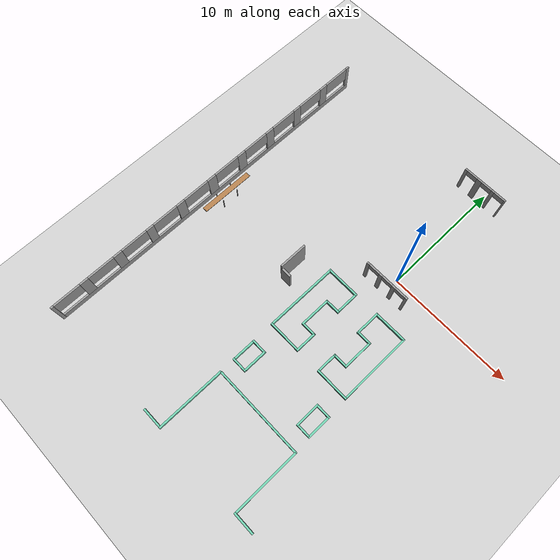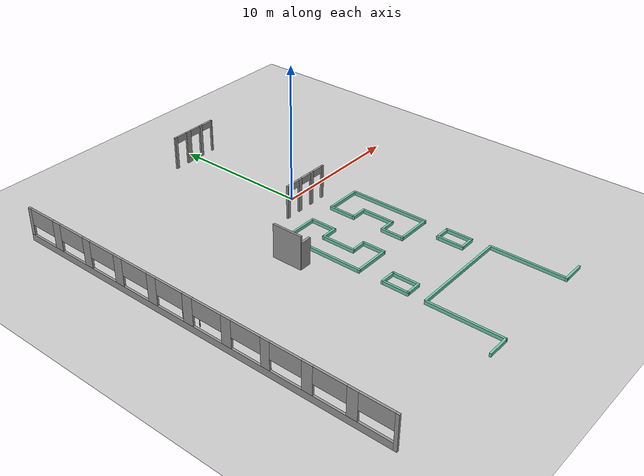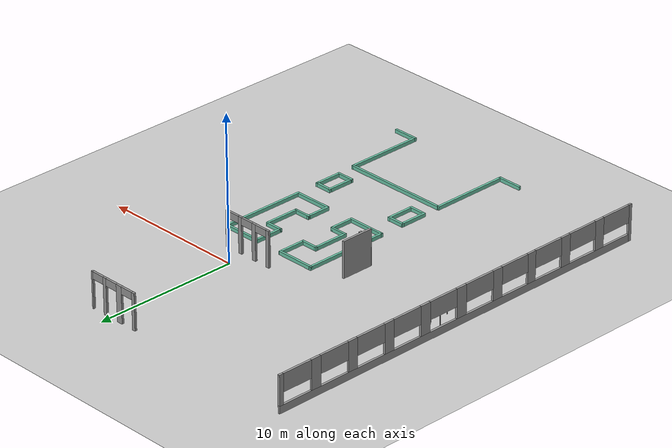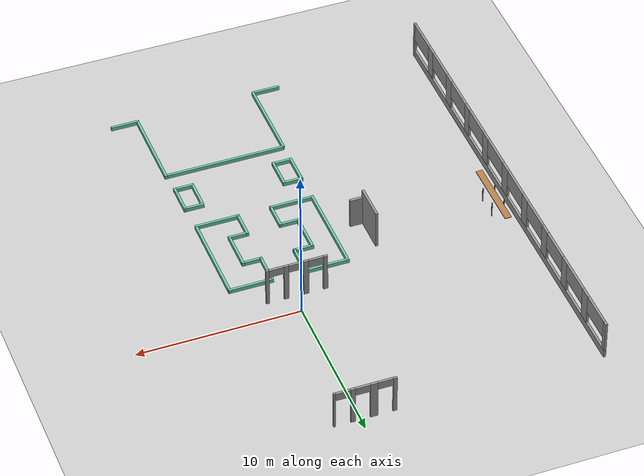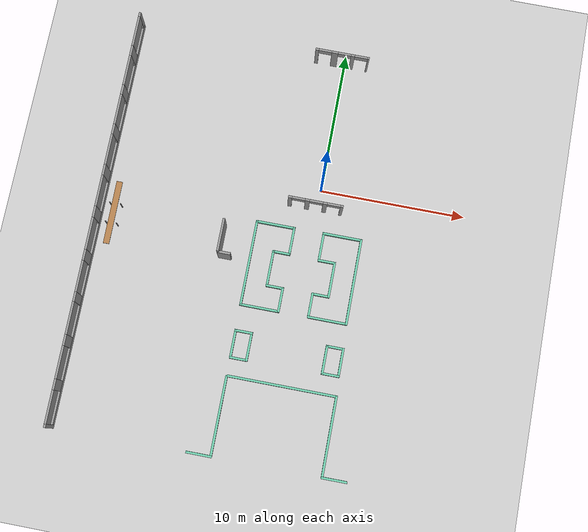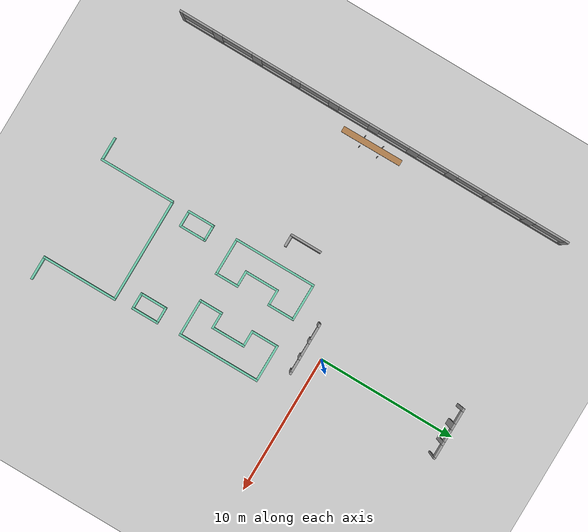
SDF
<sdf version="1.6">
 <world name="default">
  <model name="ground_plane">
   <static>1</static>
   <link name="link">
    <collision name="collision">
     <geometry><plane><normal>0 0 1</normal><size>100 100</size></plane></geometry>
     <surface><friction><ode><mu>100</mu><mu2>50</mu2></ode></friction></surface>
    </collision>
    <visual name="visual">
     <cast_shadows>0</cast_shadows>
     <geometry><plane><normal>0 0 1</normal><size>100 100</size></plane></geometry>
     <material>
      <script><uri>file://media/materials/scripts/gazebo.material</uri><name>Gazebo/Grey</name></script>
     </material>
    </visual>
   </link>
  </model>
  <model name="giardinoCV1">
   <pose>-0.16754 -4.92249 0 0 -0 0</pose>
   <link name="Wall_10">
    <collision name="Wall_10_Collision">
     <geometry><box><size>6 0.15 0.25</size></box></geometry>
     <pose>0 0 0.125 0 -0 0</pose>
    </collision>
    <visual name="Wall_10_Visual">
     <pose>0 0 0.125 0 -0 0</pose>
     <geometry><box><size>6 0.15 0.25</size></box></geometry>
     <material>
      <script><uri>file://media/materials/scripts/gazebo.material</uri><name>Gazebo/Grey</name></script>
      <ambient>0.435294 0.796078 0.67451 1</ambient>
     </material>
    </visual>
    <pose>-3.747 -0.957193 0 0 -0 1.5708</pose>
   </link>
   <link name="Wall_101">
    <pose>-0.099908 14.1522 0 0 -0 0</pose>
    <visual name="Wall_101_Visual_0">
     <pose>-1.76004 0 1.25 0 -0 0</pose>
     <geometry><box><size>0.229915 0.15 2.5</size></box></geometry>
     <material>
      <script><uri>file://media/materials/scripts/gazebo.material</uri><name>Gazebo/Grey</name></script>
      <ambient>1 1 1 1</ambient>
     </material>
    </visual>
    <collision name="Wall_101_Collision_0">
     <geometry><box><size>0.229915 0.15 2.5</size></box></geometry>
     <pose>-1.76004 0 1.25 0 -0 0</pose>
    </collision>
    <visual name="Wall_101_Visual_1">
     <pose>-0.524419 0 1.25 0 -0 0</pose>
     <geometry><box><size>0.441333 0.15 2.5</size></box></geometry>
     <material>
      <script><uri>file://media/materials/scripts/gazebo.material</uri><name>Gazebo/Grey</name></script>
      <ambient>1 1 1 1</ambient>
     </material>
    </visual>
    <collision name="Wall_101_Collision_1">
     <geometry><box><size>0.441333 0.15 2.5</size></box></geometry>
     <pose>-0.524419 0 1.25 0 -0 0</pose>
    </collision>
    <visual name="Wall_101_Visual_2">
     <pose>0.724862 0 1.25 0 -0 0</pose>
     <geometry><box><size>0.257229 0.15 2.5</size></box></geometry>
     <material>
      <script><uri>file://media/materials/scripts/gazebo.material</uri><name>Gazebo/Grey</name></script>
      <ambient>1 1 1 1</ambient>
     </material>
    </visual>
    <collision name="Wall_101_Collision_2">
     <geometry><box><size>0.257229 0.15 2.5</size></box></geometry>
     <pose>0.724862 0 1.25 0 -0 0</pose>
    </collision>
    <visual name="Wall_101_Visual_3">
     <pose>1.81424 0 1.25 0 -0 0</pose>
     <geometry><box><size>0.121523 0.15 2.5</size></box></geometry>
     <material>
      <script><uri>file://media/materials/scripts/gazebo.material</uri><name>Gazebo/Grey</name></script>
      <ambient>1 1 1 1</ambient>
     </material>
    </visual>
    <collision name="Wall_101_Collision_3">
     <geometry><box><size>0.121523 0.15 2.5</size></box></geometry>
     <pose>1.81424 0 1.25 0 -0 0</pose>
    </collision>
    <visual name="Wall_101_Visual_4">
     <pose>-1.19508 0 2.25 0 -0 0</pose>
     <geometry><box><size>0.9 0.15 0.5</size></box></geometry>
     <material>
      <script><uri>file://media/materials/scripts/gazebo.material</uri><name>Gazebo/Grey</name></script>
      <ambient>1 1 1 1</ambient>
     </material>
    </visual>
    <collision name="Wall_101_Collision_4">
     <geometry><box><size>0.9 0.15 0.5</size></box></geometry>
     <pose>-1.19508 0 2.25 0 -0 0</pose>
    </collision>
    <visual name="Wall_101_Visual_5">
     <pose>0.146248 0 2.25 0 -0 0</pose>
     <geometry><box><size>0.9 0.15 0.5</size></box></geometry>
     <material>
      <script><uri>file://media/materials/scripts/gazebo.material</uri><name>Gazebo/Grey</name></script>
      <ambient>1 1 1 1</ambient>
     </material>
    </visual>
    <collision name="Wall_101_Collision_5">
     <geometry><box><size>0.9 0.15 0.5</size></box></geometry>
     <pose>0.146248 0 2.25 0 -0 0</pose>
    </collision>
    <visual name="Wall_101_Visual_6">
     <pose>1.30348 0 2.25 0 -0 0</pose>
     <geometry><box><size>0.9 0.15 0.5</size></box></geometry>
     <material>
      <script><uri>file://media/materials/scripts/gazebo.material</uri><name>Gazebo/Grey</name></script>
      <ambient>1 1 1 1</ambient>
     </material>
    </visual>
    <collision name="Wall_101_Collision_6">
     <geometry><box><size>0.9 0.15 0.5</size></box></geometry>
     <pose>1.30348 0 2.25 0 -0 0</pose>
    </collision>
   </link>
   <link name="Wall_12">
    <collision name="Wall_12_Collision">
     <geometry><box><size>6 0.15 0.25</size></box></geometry>
     <pose>0 0 0.125 0 -0 0</pose>
    </collision>
    <visual name="Wall_12_Visual">
     <pose>0 0 0.125 0 -0 0</pose>
     <geometry><box><size>6 0.15 0.25</size></box></geometry>
     <material>
      <script><uri>file://media/materials/scripts/gazebo.material</uri><name>Gazebo/Grey</name></script>
      <ambient>0.435294 0.796078 0.67451 1</ambient>
     </material>
    </visual>
    <pose>3.509 -0.940193 0 0 -0 1.5708</pose>
   </link>
   <link name="Wall_2">
    <collision name="Wall_2_Collision">
     <geometry><box><size>1.75 0.15 0.25</size></box></geometry>
     <pose>0 0 0.125 0 -0 0</pose>
    </collision>
    <visual name="Wall_2_Visual">
     <pose>0 0 0.125 0 -0 0</pose>
     <geometry><box><size>1.75 0.15 0.25</size></box></geometry>
     <material>
      <script><uri>file://media/materials/scripts/gazebo.material</uri><name>Gazebo/Grey</name></script>
      <ambient>0.435294 0.796078 0.67451 1</ambient>
     </material>
    </visual>
    <pose>-4.52 -14.1522 0 0 -0 0</pose>
   </link>
   <link name="Wall_3">
    <collision name="Wall_3_Collision">
     <geometry><box><size>5.5 0.15 0.25</size></box></geometry>
     <pose>0 0 0.125 0 -0 0</pose>
    </collision>
    <visual name="Wall_3_Visual">
     <pose>0 0 0.125 0 -0 0</pose>
     <geometry><box><size>5.5 0.15 0.25</size></box></geometry>
     <material>
      <script><uri>file://media/materials/scripts/gazebo.material</uri><name>Gazebo/Grey</name></script>
      <ambient>0.435294 0.796078 0.67451 1</ambient>
     </material>
    </visual>
    <pose>-3.72 -11.4772 0 0 -0 1.5708</pose>
   </link>
   <link name="Wall_32">
    <collision name="Wall_32_Collision">
     <geometry><box><size>2.75 0.15 0.25</size></box></geometry>
     <pose>0 0 0.125 0 -0 0</pose>
    </collision>
    <visual name="Wall_32_Visual">
     <pose>0 0 0.125 0 -0 0</pose>
     <geometry><box><size>2.75 0.15 0.25</size></box></geometry>
     <material>
      <script><uri>file://media/materials/scripts/gazebo.material</uri><name>Gazebo/Grey</name></script>
      <ambient>0.435294 0.796078 0.67451 1</ambient>
     </material>
    </visual>
    <pose>-2.447 -3.88219 0 0 -0 0</pose>
   </link>
   <link name="Wall_34">
    <collision name="Wall_34_Collision">
     <geometry><box><size>2.75 0.15 0.25</size></box></geometry>
     <pose>0 0 0.125 0 -0 0</pose>
    </collision>
    <visual name="Wall_34_Visual">
     <pose>0 0 0.125 0 -0 0</pose>
     <geometry><box><size>2.75 0.15 0.25</size></box></geometry>
     <material>
      <script><uri>file://media/materials/scripts/gazebo.material</uri><name>Gazebo/Grey</name></script>
      <ambient>0.435294 0.796078 0.67451 1</ambient>
     </material>
    </visual>
    <pose>2.209 -3.86519 0 0 -0 3.14159</pose>
   </link>
   <link name="Wall_38">
    <collision name="Wall_38_Collision">
     <geometry><box><size>2.75 0.15 0.25</size></box></geometry>
     <pose>0 0 0.125 0 -0 0</pose>
    </collision>
    <visual name="Wall_38_Visual">
     <pose>0 0 0.125 0 -0 0</pose>
     <geometry><box><size>2.75 0.15 0.25</size></box></geometry>
     <material>
      <script><uri>file://media/materials/scripts/gazebo.material</uri><name>Gazebo/Grey</name></script>
      <ambient>0.435294 0.796078 0.67451 1</ambient>
     </material>
    </visual>
    <pose>-2.447 1.96781 0 0 -0 0</pose>
   </link>
   <link name="Wall_40">
    <collision name="Wall_40_Collision">
     <geometry><box><size>2.75 0.15 0.25</size></box></geometry>
     <pose>0 0 0.125 0 -0 0</pose>
    </collision>
    <visual name="Wall_40_Visual">
     <pose>0 0 0.125 0 -0 0</pose>
     <geometry><box><size>2.75 0.15 0.25</size></box></geometry>
     <material>
      <script><uri>file://media/materials/scripts/gazebo.material</uri><name>Gazebo/Grey</name></script>
      <ambient>0.435294 0.796078 0.67451 1</ambient>
     </material>
    </visual>
    <pose>2.209 1.98481 0 0 -0 3.14159</pose>
   </link>
   <link name="Wall_45">
    <collision name="Wall_45_Collision">
     <geometry><box><size>2 0.15 0.25</size></box></geometry>
     <pose>0 0 0.125 0 -0 0</pose>
    </collision>
    <visual name="Wall_45_Visual">
     <pose>0 0 0.125 0 -0 0</pose>
     <geometry><box><size>2 0.15 0.25</size></box></geometry>
     <material>
      <script><uri>file://media/materials/scripts/gazebo.material</uri><name>Gazebo/Grey</name></script>
      <ambient>0.435294 0.796078 0.67451 1</ambient>
     </material>
    </visual>
    <pose>-3.728 -6.59019 0 0 0 -1.5708</pose>
   </link>
   <link name="Wall_47">
    <collision name="Wall_47_Collision">
     <geometry><box><size>2 0.15 0.25</size></box></geometry>
     <pose>0 0 0.125 0 -0 0</pose>
    </collision>
    <visual name="Wall_47_Visual">
     <pose>0 0 0.125 0 -0 0</pose>
     <geometry><box><size>2 0.15 0.25</size></box></geometry>
     <material>
      <script><uri>file://media/materials/scripts/gazebo.material</uri><name>Gazebo/Grey</name></script>
      <ambient>0.435294 0.796078 0.67451 1</ambient>
     </material>
    </visual>
    <pose>3.611 -6.49119 0 0 0 -1.5708</pose>
   </link>
   <link name="Wall_5">
    <collision name="Wall_5_Collision">
     <geometry><box><size>1.75 0.15 0.25</size></box></geometry>
     <pose>0 0 0.125 0 -0 0</pose>
    </collision>
    <visual name="Wall_5_Visual">
     <pose>0 0 0.125 0 -0 0</pose>
     <geometry><box><size>1.75 0.15 0.25</size></box></geometry>
     <material>
      <script><uri>file://media/materials/scripts/gazebo.material</uri><name>Gazebo/Grey</name></script>
      <ambient>0.435294 0.796078 0.67451 1</ambient>
     </material>
    </visual>
    <pose>4.52 -14.1062 0 0 -0 3.14159</pose>
   </link>
   <link name="Wall_51">
    <collision name="Wall_51_Collision">
     <geometry><box><size>1.25 0.15 0.25</size></box></geometry>
     <pose>0 0 0.125 0 -0 0</pose>
    </collision>
    <visual name="Wall_51_Visual">
     <pose>0 0 0.125 0 -0 0</pose>
     <geometry><box><size>1.25 0.15 0.25</size></box></geometry>
     <material>
      <script><uri>file://media/materials/scripts/gazebo.material</uri><name>Gazebo/Grey</name></script>
      <ambient>0.435294 0.796078 0.67451 1</ambient>
     </material>
    </visual>
    <pose>3.061 -5.56619 0 0 -0 3.14159</pose>
   </link>
   <link name="Wall_53">
    <collision name="Wall_53_Collision">
     <geometry><box><size>1.25 0.15 0.25</size></box></geometry>
     <pose>0 0 0.125 0 -0 0</pose>
    </collision>
    <visual name="Wall_53_Visual">
     <pose>0 0 0.125 0 -0 0</pose>
     <geometry><box><size>1.25 0.15 0.25</size></box></geometry>
     <material>
      <script><uri>file://media/materials/scripts/gazebo.material</uri><name>Gazebo/Grey</name></script>
      <ambient>0.435294 0.796078 0.67451 1</ambient>
     </material>
    </visual>
    <pose>-3.178 -7.51519 0 0 -0 0</pose>
   </link>
   <link name="Wall_55">
    <collision name="Wall_55_Collision">
     <geometry><box><size>1.25 0.15 0.25</size></box></geometry>
     <pose>0 0 0.125 0 -0 0</pose>
    </collision>
    <visual name="Wall_55_Visual">
     <pose>0 0 0.125 0 -0 0</pose>
     <geometry><box><size>1.25 0.15 0.25</size></box></geometry>
     <material>
      <script><uri>file://media/materials/scripts/gazebo.material</uri><name>Gazebo/Grey</name></script>
      <ambient>0.435294 0.796078 0.67451 1</ambient>
     </material>
    </visual>
    <pose>3.061 -7.41619 0 0 -0 3.14159</pose>
   </link>
   <link name="Wall_57">
    <collision name="Wall_57_Collision">
     <geometry><box><size>1.25 0.15 0.25</size></box></geometry>
     <pose>0 0 0.125 0 -0 0</pose>
    </collision>
    <visual name="Wall_57_Visual">
     <pose>0 0 0.125 0 -0 0</pose>
     <geometry><box><size>1.25 0.15 0.25</size></box></geometry>
     <material>
      <script><uri>file://media/materials/scripts/gazebo.material</uri><name>Gazebo/Grey</name></script>
      <ambient>0.435294 0.796078 0.67451 1</ambient>
     </material>
    </visual>
    <pose>-3.178 -5.66519 0 0 -0 0</pose>
   </link>
   <link name="Wall_58">
    <collision name="Wall_58_Collision">
     <geometry><box><size>2 0.15 0.25</size></box></geometry>
     <pose>0 0 0.125 0 -0 0</pose>
    </collision>
    <visual name="Wall_58_Visual">
     <pose>0 0 0.125 0 -0 0</pose>
     <geometry><box><size>2 0.15 0.25</size></box></geometry>
     <material>
      <script><uri>file://media/materials/scripts/gazebo.material</uri><name>Gazebo/Grey</name></script>
      <ambient>0.435294 0.796078 0.67451 1</ambient>
     </material>
    </visual>
    <pose>-2.628 -6.59019 0 0 0 -1.5708</pose>
   </link>
   <link name="Wall_60">
    <collision name="Wall_60_Collision">
     <geometry><box><size>2 0.15 0.25</size></box></geometry>
     <pose>0 0 0.125 0 -0 0</pose>
    </collision>
    <visual name="Wall_60_Visual">
     <pose>0 0 0.125 0 -0 0</pose>
     <geometry><box><size>2 0.15 0.25</size></box></geometry>
     <material>
      <script><uri>file://media/materials/scripts/gazebo.material</uri><name>Gazebo/Grey</name></script>
      <ambient>0.435294 0.796078 0.67451 1</ambient>
     </material>
    </visual>
    <pose>2.511 -6.49119 0 0 0 -1.5708</pose>
   </link>
   <link name="Wall_64">
    <collision name="Wall_64_Collision">
     <geometry><box><size>2 0.15 0.25</size></box></geometry>
     <pose>0 0 0.125 0 -0 0</pose>
    </collision>
    <visual name="Wall_64_Visual">
     <pose>0 0 0.125 0 -0 0</pose>
     <geometry><box><size>2 0.15 0.25</size></box></geometry>
     <material>
      <script><uri>file://media/materials/scripts/gazebo.material</uri><name>Gazebo/Grey</name></script>
      <ambient>0.435294 0.796078 0.67451 1</ambient>
     </material>
    </visual>
    <pose>-1.147 1.04281 0 0 0 -1.5708</pose>
   </link>
   <link name="Wall_7">
    <collision name="Wall_7_Collision">
     <geometry><box><size>5.5 0.15 0.25</size></box></geometry>
     <pose>0 0 0.125 0 -0 0</pose>
    </collision>
    <visual name="Wall_7_Visual">
     <pose>0 0 0.125 0 -0 0</pose>
     <geometry><box><size>5.5 0.15 0.25</size></box></geometry>
     <material>
      <script><uri>file://media/materials/scripts/gazebo.material</uri><name>Gazebo/Grey</name></script>
      <ambient>0.435294 0.796078 0.67451 1</ambient>
     </material>
    </visual>
    <pose>3.72 -11.4312 0 0 -0 1.5708</pose>
   </link>
   <link name="Wall_70">
    <collision name="Wall_70_Collision">
     <geometry><box><size>1.75 0.15 0.25</size></box></geometry>
     <pose>0 0 0.125 0 -0 0</pose>
    </collision>
    <visual name="Wall_70_Visual">
     <pose>0 0 0.125 0 -0 0</pose>
     <geometry><box><size>1.75 0.15 0.25</size></box></geometry>
     <material>
      <script><uri>file://media/materials/scripts/gazebo.material</uri><name>Gazebo/Grey</name></script>
      <ambient>0.435294 0.796078 0.67451 1</ambient>
     </material>
    </visual>
    <pose>-1.147 -3.08219 0 0 0 -1.5708</pose>
   </link>
   <link name="Wall_72">
    <collision name="Wall_72_Collision">
     <geometry><box><size>1.75 0.15 0.25</size></box></geometry>
     <pose>0 0 0.125 0 -0 0</pose>
    </collision>
    <visual name="Wall_72_Visual">
     <pose>0 0 0.125 0 -0 0</pose>
     <geometry><box><size>1.75 0.15 0.25</size></box></geometry>
     <material>
      <script><uri>file://media/materials/scripts/gazebo.material</uri><name>Gazebo/Grey</name></script>
      <ambient>0.435294 0.796078 0.67451 1</ambient>
     </material>
    </visual>
    <pose>0.909 -3.06519 0 0 -0 1.5708</pose>
   </link>
   <link name="Wall_73">
    <collision name="Wall_73_Collision">
     <geometry><box><size>1.25 0.15 0.25</size></box></geometry>
     <pose>0 0 0.125 0 -0 0</pose>
    </collision>
    <visual name="Wall_73_Visual">
     <pose>0 0 0.125 0 -0 0</pose>
     <geometry><box><size>1.25 0.15 0.25</size></box></geometry>
     <material>
      <script><uri>file://media/materials/scripts/gazebo.material</uri><name>Gazebo/Grey</name></script>
      <ambient>0.435294 0.796078 0.67451 1</ambient>
     </material>
    </visual>
    <pose>1.459 -2.26519 0 0 -0 0</pose>
   </link>
   <link name="Wall_74">
    <collision name="Wall_74_Collision">
     <geometry><box><size>2.5 0.15 0.25</size></box></geometry>
     <pose>0 0 0.125 0 -0 0</pose>
    </collision>
    <visual name="Wall_74_Visual">
     <pose>0 0 0.125 0 -0 0</pose>
     <geometry><box><size>2.5 0.15 0.25</size></box></geometry>
     <material>
      <script><uri>file://media/materials/scripts/gazebo.material</uri><name>Gazebo/Grey</name></script>
      <ambient>0.435294 0.796078 0.67451 1</ambient>
     </material>
    </visual>
    <pose>2.009 -1.09019 0 0 -0 1.5708</pose>
   </link>
   <link name="Wall_75">
    <collision name="Wall_75_Collision">
     <geometry><box><size>1.25 0.15 0.25</size></box></geometry>
     <pose>0 0 0.125 0 -0 0</pose>
    </collision>
    <visual name="Wall_75_Visual">
     <pose>0 0 0.125 0 -0 0</pose>
     <geometry><box><size>1.25 0.15 0.25</size></box></geometry>
     <material>
      <script><uri>file://media/materials/scripts/gazebo.material</uri><name>Gazebo/Grey</name></script>
      <ambient>0.435294 0.796078 0.67451 1</ambient>
     </material>
    </visual>
    <pose>1.459 0.084807 0 0 -0 3.14159</pose>
   </link>
   <link name="Wall_76">
    <collision name="Wall_76_Collision">
     <geometry><box><size>2.05 0.15 0.25</size></box></geometry>
     <pose>0 0 0.125 0 -0 0</pose>
    </collision>
    <visual name="Wall_76_Visual">
     <pose>0 0 0.125 0 -0 0</pose>
     <geometry><box><size>2.05 0.15 0.25</size></box></geometry>
     <material>
      <script><uri>file://media/materials/scripts/gazebo.material</uri><name>Gazebo/Grey</name></script>
      <ambient>0.435294 0.796078 0.67451 1</ambient>
     </material>
    </visual>
    <pose>0.909 1.03481 0 0 -0 1.5708</pose>
   </link>
   <link name="Wall_8">
    <collision name="Wall_8_Collision">
     <geometry><box><size>7.5 0.15 0.25</size></box></geometry>
     <pose>0 0 0.125 0 -0 0</pose>
    </collision>
    <visual name="Wall_8_Visual">
     <pose>0 0 0.125 0 -0 0</pose>
     <geometry><box><size>7.5 0.15 0.25</size></box></geometry>
     <material>
      <script><uri>file://media/materials/scripts/gazebo.material</uri><name>Gazebo/Grey</name></script>
      <ambient>0.435294 0.796078 0.67451 1</ambient>
     </material>
    </visual>
    <pose>0.045 -8.75619 0 0 -0 3.14159</pose>
   </link>
   <link name="Wall_80">
    <collision name="Wall_80_Collision">
     <geometry><box><size>1.25 0.15 0.25</size></box></geometry>
     <pose>0 0 0.125 0 -0 0</pose>
    </collision>
    <visual name="Wall_80_Visual">
     <pose>0 0 0.125 0 -0 0</pose>
     <geometry><box><size>1.25 0.15 0.25</size></box></geometry>
     <material>
      <script><uri>file://media/materials/scripts/gazebo.material</uri><name>Gazebo/Grey</name></script>
      <ambient>0.435294 0.796078 0.67451 1</ambient>
     </material>
    </visual>
    <pose>-1.697 -2.28219 0 0 -0 3.14159</pose>
   </link>
   <link name="Wall_84">
    <collision name="Wall_84_Collision">
     <geometry><box><size>1.25 0.15 0.25</size></box></geometry>
     <pose>0 0 0.125 0 -0 0</pose>
    </collision>
    <visual name="Wall_84_Visual">
     <pose>0 0 0.125 0 -0 0</pose>
     <geometry><box><size>1.25 0.15 0.25</size></box></geometry>
     <material>
      <script><uri>file://media/materials/scripts/gazebo.material</uri><name>Gazebo/Grey</name></script>
      <ambient>0.435294 0.796078 0.67451 1</ambient>
     </material>
    </visual>
    <pose>-1.697 0.117807 0 0 -0 3.14159</pose>
   </link>
   <link name="Wall_85">
    <collision name="Wall_85_Collision">
     <geometry><box><size>2.55 0.15 0.25</size></box></geometry>
     <pose>0 0 0.125 0 -0 0</pose>
    </collision>
    <visual name="Wall_85_Visual">
     <pose>0 0 0.125 0 -0 0</pose>
     <geometry><box><size>2.55 0.15 0.25</size></box></geometry>
     <material>
      <script><uri>file://media/materials/scripts/gazebo.material</uri><name>Gazebo/Grey</name></script>
      <ambient>0.435294 0.796078 0.67451 1</ambient>
     </material>
    </visual>
    <pose>-2.247 -1.08219 0 0 0 -1.5708</pose>
   </link>
   <link name="Wall_97">
    <pose>-0.021006 3.55303 0 0 -0 0</pose>
    <visual name="Wall_97_Visual_0">
     <pose>-1.74689 0 1.25 0 -0 0</pose>
     <geometry><box><size>0.256216 0.15 2.5</size></box></geometry>
     <material>
      <script><uri>file://media/materials/scripts/gazebo.material</uri><name>Gazebo/Grey</name></script>
      <ambient>1 1 1 1</ambient>
     </material>
    </visual>
    <collision name="Wall_97_Collision_0">
     <geometry><box><size>0.256216 0.15 2.5</size></box></geometry>
     <pose>-1.74689 0 1.25 0 -0 0</pose>
    </collision>
    <visual name="Wall_97_Visual_1">
     <pose>-0.56387 0 1.25 0 -0 0</pose>
     <geometry><box><size>0.30983 0.15 2.5</size></box></geometry>
     <material>
      <script><uri>file://media/materials/scripts/gazebo.material</uri><name>Gazebo/Grey</name></script>
      <ambient>1 1 1 1</ambient>
     </material>
    </visual>
    <collision name="Wall_97_Collision_1">
     <geometry><box><size>0.30983 0.15 2.5</size></box></geometry>
     <pose>-0.56387 0 1.25 0 -0 0</pose>
    </collision>
    <visual name="Wall_97_Visual_2">
     <pose>0.63281 0 1.25 0 -0 0</pose>
     <geometry><box><size>0.283529 0.15 2.5</size></box></geometry>
     <material>
      <script><uri>file://media/materials/scripts/gazebo.material</uri><name>Gazebo/Grey</name></script>
      <ambient>1 1 1 1</ambient>
     </material>
    </visual>
    <collision name="Wall_97_Collision_2">
     <geometry><box><size>0.283529 0.15 2.5</size></box></geometry>
     <pose>0.63281 0 1.25 0 -0 0</pose>
    </collision>
    <visual name="Wall_97_Visual_3">
     <pose>1.77479 0 1.25 0 -0 0</pose>
     <geometry><box><size>0.200425 0.15 2.5</size></box></geometry>
     <material>
      <script><uri>file://media/materials/scripts/gazebo.material</uri><name>Gazebo/Grey</name></script>
      <ambient>1 1 1 1</ambient>
     </material>
    </visual>
    <collision name="Wall_97_Collision_3">
     <geometry><box><size>0.200425 0.15 2.5</size></box></geometry>
     <pose>1.77479 0 1.25 0 -0 0</pose>
    </collision>
    <visual name="Wall_97_Visual_4">
     <pose>-1.16878 0 2.25 0 -0 0</pose>
     <geometry><box><size>0.9 0.15 0.5</size></box></geometry>
     <material>
      <script><uri>file://media/materials/scripts/gazebo.material</uri><name>Gazebo/Grey</name></script>
      <ambient>1 1 1 1</ambient>
     </material>
    </visual>
    <collision name="Wall_97_Collision_4">
     <geometry><box><size>0.9 0.15 0.5</size></box></geometry>
     <pose>-1.16878 0 2.25 0 -0 0</pose>
    </collision>
    <visual name="Wall_97_Visual_5">
     <pose>0.041045 0 2.25 0 -0 0</pose>
     <geometry><box><size>0.9 0.15 0.5</size></box></geometry>
     <material>
      <script><uri>file://media/materials/scripts/gazebo.material</uri><name>Gazebo/Grey</name></script>
      <ambient>1 1 1 1</ambient>
     </material>
    </visual>
    <collision name="Wall_97_Collision_5">
     <geometry><box><size>0.9 0.15 0.5</size></box></geometry>
     <pose>0.041045 0 2.25 0 -0 0</pose>
    </collision>
    <visual name="Wall_97_Visual_6">
     <pose>1.22457 0 2.25 0 -0 0</pose>
     <geometry><box><size>0.9 0.15 0.5</size></box></geometry>
     <material>
      <script><uri>file://media/materials/scripts/gazebo.material</uri><name>Gazebo/Grey</name></script>
      <ambient>1 1 1 1</ambient>
     </material>
    </visual>
    <collision name="Wall_97_Collision_6">
     <geometry><box><size>0.9 0.15 0.5</size></box></geometry>
     <pose>1.22457 0 2.25 0 -0 0</pose>
    </collision>
   </link>
   <static>1</static>
  </model>
  <model name="ca_vignal_1">
   <pose>-8.21048 -6.13752 0 0 -0 0</pose>
   <link name="Door_1">
    <collision name="Door_1_Collision">
     <geometry><box><size>0.9 0.17 2</size></box></geometry>
     <pose>0 0 1 0 -0 0</pose>
    </collision>
    <visual name="Door_1_Visual">
     <pose>0 0 1 0 -0 0</pose>
     <geometry><box><size>0.9 0.17 2</size></box></geometry>
     <material>
      <script><uri>file://media/materials/scripts/gazebo.material</uri><name>Gazebo/Grey</name></script>
     </material>
    </visual>
    <pose>2.62198 0.308665 0 0 -0 0</pose>
   </link>
   <link name="Wall_0">
    <pose>-6.35164 1.29841 0 0 -0 1.5708</pose>
    <visual name="Wall_0_Visual_0">
     <pose>-14.2835 0 1.25 0 -0 0</pose>
     <geometry><box><size>0.235089 0.15 2.5</size></box></geometry>
     <material>
      <script><uri>file://media/materials/scripts/gazebo.material</uri><name>Gazebo/Grey</name></script>
      <ambient>1 1 1 1</ambient>
     </material>
    </visual>
    <collision name="Wall_0_Collision_0">
     <geometry><box><size>0.235089 0.15 2.5</size></box></geometry>
     <pose>-14.2835 0 1.25 0 -0 0</pose>
    </collision>
    <visual name="Wall_0_Visual_1">
     <pose>0.117544 0 0.25 0 -0 0</pose>
     <geometry><box><size>28.5671 0.15 0.5</size></box></geometry>
     <material>
      <script><uri>file://media/materials/scripts/gazebo.material</uri><name>Gazebo/Grey</name></script>
      <ambient>1 1 1 1</ambient>
     </material>
    </visual>
    <collision name="Wall_0_Collision_1">
     <geometry><box><size>28.5671 0.15 0.5</size></box></geometry>
     <pose>0.117544 0 0.25 0 -0 0</pose>
    </collision>
    <visual name="Wall_0_Visual_2">
     <pose>-11.5998 0 1.5 0 -0 0</pose>
     <geometry><box><size>0.716549 0.15 2</size></box></geometry>
     <material>
      <script><uri>file://media/materials/scripts/gazebo.material</uri><name>Gazebo/Grey</name></script>
      <ambient>1 1 1 1</ambient>
     </material>
    </visual>
    <collision name="Wall_0_Collision_2">
     <geometry><box><size>0.716549 0.15 2</size></box></geometry>
     <pose>-11.5998 0 1.5 0 -0 0</pose>
    </collision>
    <visual name="Wall_0_Visual_3">
     <pose>-8.68449 0 1.5 0 -0 0</pose>
     <geometry><box><size>0.738343 0.15 2</size></box></geometry>
     <material>
      <script><uri>file://media/materials/scripts/gazebo.material</uri><name>Gazebo/Grey</name></script>
      <ambient>1 1 1 1</ambient>
     </material>
    </visual>
    <collision name="Wall_0_Collision_3">
     <geometry><box><size>0.738343 0.15 2</size></box></geometry>
     <pose>-8.68449 0 1.5 0 -0 0</pose>
    </collision>
    <visual name="Wall_0_Visual_4">
     <pose>-5.79269 0 1.5 0 -0 0</pose>
     <geometry><box><size>0.646852 0.15 2</size></box></geometry>
     <material>
      <script><uri>file://media/materials/scripts/gazebo.material</uri><name>Gazebo/Grey</name></script>
      <ambient>1 1 1 1</ambient>
     </material>
    </visual>
    <collision name="Wall_0_Collision_4">
     <geometry><box><size>0.646852 0.15 2</size></box></geometry>
     <pose>-5.79269 0 1.5 0 -0 0</pose>
    </collision>
    <visual name="Wall_0_Visual_5">
     <pose>-2.9503 0 1.5 0 -0 0</pose>
     <geometry><box><size>0.744454 0.15 2</size></box></geometry>
     <material>
      <script><uri>file://media/materials/scripts/gazebo.material</uri><name>Gazebo/Grey</name></script>
      <ambient>1 1 1 1</ambient>
     </material>
    </visual>
    <collision name="Wall_0_Collision_5">
     <geometry><box><size>0.744454 0.15 2</size></box></geometry>
     <pose>-2.9503 0 1.5 0 -0 0</pose>
    </collision>
    <visual name="Wall_0_Visual_6">
     <pose>0.028378 0 1.5 0 -0 0</pose>
     <geometry><box><size>0.779514 0.15 2</size></box></geometry>
     <material>
      <script><uri>file://media/materials/scripts/gazebo.material</uri><name>Gazebo/Grey</name></script>
      <ambient>1 1 1 1</ambient>
     </material>
    </visual>
    <collision name="Wall_0_Collision_6">
     <geometry><box><size>0.779514 0.15 2</size></box></geometry>
     <pose>0.028378 0 1.5 0 -0 0</pose>
    </collision>
    <visual name="Wall_0_Visual_7">
     <pose>2.96332 0 1.5 0 -0 0</pose>
     <geometry><box><size>0.761928 0.15 2</size></box></geometry>
     <material>
      <script><uri>file://media/materials/scripts/gazebo.material</uri><name>Gazebo/Grey</name></script>
      <ambient>1 1 1 1</ambient>
     </material>
    </visual>
    <collision name="Wall_0_Collision_7">
     <geometry><box><size>0.761928 0.15 2</size></box></geometry>
     <pose>2.96332 0 1.5 0 -0 0</pose>
    </collision>
    <visual name="Wall_0_Visual_8">
     <pose>5.85759 0 1.5 0 -0 0</pose>
     <geometry><box><size>0.733132 0.15 2</size></box></geometry>
     <material>
      <script><uri>file://media/materials/scripts/gazebo.material</uri><name>Gazebo/Grey</name></script>
      <ambient>1 1 1 1</ambient>
     </material>
    </visual>
    <collision name="Wall_0_Collision_8">
     <geometry><box><size>0.733132 0.15 2</size></box></geometry>
     <pose>5.85759 0 1.5 0 -0 0</pose>
    </collision>
    <visual name="Wall_0_Visual_9">
     <pose>8.71919 0 1.5 0 -0 0</pose>
     <geometry><box><size>0.696864 0.15 2</size></box></geometry>
     <material>
      <script><uri>file://media/materials/scripts/gazebo.material</uri><name>Gazebo/Grey</name></script>
      <ambient>1 1 1 1</ambient>
     </material>
    </visual>
    <collision name="Wall_0_Collision_9">
     <geometry><box><size>0.696864 0.15 2</size></box></geometry>
     <pose>8.71919 0 1.5 0 -0 0</pose>
    </collision>
    <visual name="Wall_0_Visual_10">
     <pose>11.5805 0 1.5 0 -0 0</pose>
     <geometry><box><size>0.718517 0.15 2</size></box></geometry>
     <material>
      <script><uri>file://media/materials/scripts/gazebo.material</uri><name>Gazebo/Grey</name></script>
      <ambient>1 1 1 1</ambient>
     </material>
    </visual>
    <collision name="Wall_0_Collision_10">
     <geometry><box><size>0.718517 0.15 2</size></box></geometry>
     <pose>11.5805 0 1.5 0 -0 0</pose>
    </collision>
    <visual name="Wall_0_Visual_11">
     <pose>14.2472 0 1.5 0 -0 0</pose>
     <geometry><box><size>0.30779 0.15 2</size></box></geometry>
     <material>
      <script><uri>file://media/materials/scripts/gazebo.material</uri><name>Gazebo/Grey</name></script>
      <ambient>1 1 1 1</ambient>
     </material>
    </visual>
    <collision name="Wall_0_Collision_11">
     <geometry><box><size>0.30779 0.15 2</size></box></geometry>
     <pose>14.2472 0 1.5 0 -0 0</pose>
    </collision>
    <visual name="Wall_0_Visual_12">
     <pose>-13.062 0 1.9 0 -0 0</pose>
     <geometry><box><size>2.20795 0.15 1.2</size></box></geometry>
     <material>
      <script><uri>file://media/materials/scripts/gazebo.material</uri><name>Gazebo/Grey</name></script>
      <ambient>1 1 1 1</ambient>
     </material>
    </visual>
    <collision name="Wall_0_Collision_12">
     <geometry><box><size>2.20795 0.15 1.2</size></box></geometry>
     <pose>-13.062 0 1.9 0 -0 0</pose>
    </collision>
    <visual name="Wall_0_Visual_13">
     <pose>-10.1476 0 1.9 0 -0 0</pose>
     <geometry><box><size>2.18784 0.15 1.2</size></box></geometry>
     <material>
      <script><uri>file://media/materials/scripts/gazebo.material</uri><name>Gazebo/Grey</name></script>
      <ambient>1 1 1 1</ambient>
     </material>
    </visual>
    <collision name="Wall_0_Collision_13">
     <geometry><box><size>2.18784 0.15 1.2</size></box></geometry>
     <pose>-10.1476 0 1.9 0 -0 0</pose>
    </collision>
    <visual name="Wall_0_Visual_14">
     <pose>-7.21572 0 1.9 0 -0 0</pose>
     <geometry><box><size>2.19921 0.15 1.2</size></box></geometry>
     <material>
      <script><uri>file://media/materials/scripts/gazebo.material</uri><name>Gazebo/Grey</name></script>
      <ambient>1 1 1 1</ambient>
     </material>
    </visual>
    <collision name="Wall_0_Collision_14">
     <geometry><box><size>2.19921 0.15 1.2</size></box></geometry>
     <pose>-7.21572 0 1.9 0 -0 0</pose>
    </collision>
    <visual name="Wall_0_Visual_15">
     <pose>-4.3959 0 1.9 0 -0 0</pose>
     <geometry><box><size>2.14674 0.15 1.2</size></box></geometry>
     <material>
      <script><uri>file://media/materials/scripts/gazebo.material</uri><name>Gazebo/Grey</name></script>
      <ambient>1 1 1 1</ambient>
     </material>
    </visual>
    <collision name="Wall_0_Collision_15">
     <geometry><box><size>2.14674 0.15 1.2</size></box></geometry>
     <pose>-4.3959 0 1.9 0 -0 0</pose>
    </collision>
    <visual name="Wall_0_Visual_16">
     <pose>-1.46973 0 1.9 0 -0 0</pose>
     <geometry><box><size>2.2167 0.15 1.2</size></box></geometry>
     <material>
      <script><uri>file://media/materials/scripts/gazebo.material</uri><name>Gazebo/Grey</name></script>
      <ambient>1 1 1 1</ambient>
     </material>
    </visual>
    <collision name="Wall_0_Collision_16">
     <geometry><box><size>2.2167 0.15 1.2</size></box></geometry>
     <pose>-1.46973 0 1.9 0 -0 0</pose>
    </collision>
    <visual name="Wall_0_Visual_17">
     <pose>1.50025 0 1.9 0 -0 0</pose>
     <geometry><box><size>2.16423 0.15 1.2</size></box></geometry>
     <material>
      <script><uri>file://media/materials/scripts/gazebo.material</uri><name>Gazebo/Grey</name></script>
      <ambient>1 1 1 1</ambient>
     </material>
    </visual>
    <collision name="Wall_0_Collision_17">
     <geometry><box><size>2.16423 0.15 1.2</size></box></geometry>
     <pose>1.50025 0 1.9 0 -0 0</pose>
    </collision>
    <visual name="Wall_0_Visual_18">
     <pose>4.41765 0 1.9 0 -0 0</pose>
     <geometry><box><size>2.14674 0.15 1.2</size></box></geometry>
     <material>
      <script><uri>file://media/materials/scripts/gazebo.material</uri><name>Gazebo/Grey</name></script>
      <ambient>1 1 1 1</ambient>
     </material>
    </visual>
    <collision name="Wall_0_Collision_18">
     <geometry><box><size>2.14674 0.15 1.2</size></box></geometry>
     <pose>4.41765 0 1.9 0 -0 0</pose>
    </collision>
    <visual name="Wall_0_Visual_19">
     <pose>7.29746 0 1.9 0 -0 0</pose>
     <geometry><box><size>2.1466 0.15 1.2</size></box></geometry>
     <material>
      <script><uri>file://media/materials/scripts/gazebo.material</uri><name>Gazebo/Grey</name></script>
      <ambient>1 1 1 1</ambient>
     </material>
    </visual>
    <collision name="Wall_0_Collision_19">
     <geometry><box><size>2.1466 0.15 1.2</size></box></geometry>
     <pose>7.29746 0 1.9 0 -0 0</pose>
    </collision>
    <visual name="Wall_0_Visual_20">
     <pose>10.1444 0 1.9 0 -0 0</pose>
     <geometry><box><size>2.15358 0.15 1.2</size></box></geometry>
     <material>
      <script><uri>file://media/materials/scripts/gazebo.material</uri><name>Gazebo/Grey</name></script>
      <ambient>1 1 1 1</ambient>
     </material>
    </visual>
    <collision name="Wall_0_Collision_20">
     <geometry><box><size>2.15358 0.15 1.2</size></box></geometry>
     <pose>10.1444 0 1.9 0 -0 0</pose>
    </collision>
    <visual name="Wall_0_Visual_21">
     <pose>13.0165 0 1.9 0 -0 0</pose>
     <geometry><box><size>2.15358 0.15 1.2</size></box></geometry>
     <material>
      <script><uri>file://media/materials/scripts/gazebo.material</uri><name>Gazebo/Grey</name></script>
      <ambient>1 1 1 1</ambient>
     </material>
    </visual>
    <collision name="Wall_0_Collision_21">
     <geometry><box><size>2.15358 0.15 1.2</size></box></geometry>
     <pose>13.0165 0 1.9 0 -0 0</pose>
    </collision>
   </link>
   <link name="Wall_82">
    <collision name="Wall_82_Collision">
     <geometry><box><size>2.25 0.15 2.5</size></box></geometry>
     <pose>0 0 1.25 0 -0 0</pose>
    </collision>
    <visual name="Wall_82_Visual">
     <pose>0 0 1.25 0 -0 0</pose>
     <geometry><box><size>2.25 0.15 2.5</size></box></geometry>
     <material>
      <script><uri>file://media/materials/scripts/gazebo.material</uri><name>Gazebo/Grey</name></script>
      <ambient>1 1 1 1</ambient>
     </material>
    </visual>
    <pose>2.23077 1.37471 0 0 0 -1.5708</pose>
   </link>
   <static>1</static>
  </model>
  <model name="tablesclass_clone_4">
   <link name="link">
    <inertial>
     <inertia><ixx>0</ixx><ixy>0</ixy><ixz>0</ixz><iyy>0</iyy><iyz>0</iyz><izz>0</izz></inertia>
     <mass>1.73923</mass>
    </inertial>
    <visual name="front_right_leg">
     <pose>0.68 -0.38 0.5 0 -0 0</pose>
     <geometry><cylinder><radius>0.0324505</radius><length>1</length></cylinder></geometry>
     <material>
      <script><uri>file://media/materials/scripts/gazebo.material</uri><name>Gazebo/Grey</name></script>
      <ambient>0.3 0.3 0.3 1</ambient>
      <diffuse>0.7 0.7 0.7 1</diffuse>
      <specular>0.01 0.01 0.01 1</specular>
      <emissive>0 0 0 1</emissive>
     </material>
    </visual>
    <visual name="back_left_leg">
     <pose>-0.68 0.38 0.5 0 -0 0</pose>
     <geometry><cylinder><radius>0.0324505</radius><length>1</length></cylinder></geometry>
     <material>
      <script><uri>file://media/materials/scripts/gazebo.material</uri><name>Gazebo/Grey</name></script>
      <ambient>0.3 0.3 0.3 1</ambient>
      <diffuse>0.7 0.7 0.7 1</diffuse>
      <specular>0.01 0.01 0.01 1</specular>
      <emissive>0 0 0 1</emissive>
     </material>
    </visual>
    <visual name="front_left_leg">
     <pose>0.68 0.38 0.5 0 -0 0</pose>
     <geometry><cylinder><radius>0.0324505</radius><length>1</length></cylinder></geometry>
     <material>
      <script><uri>file://media/materials/scripts/gazebo.material</uri><name>Gazebo/Grey</name></script>
      <ambient>0.3 0.3 0.3 1</ambient>
      <diffuse>0.7 0.7 0.7 1</diffuse>
      <specular>0.01 0.01 0.01 1</specular>
      <emissive>0 0 0 1</emissive>
     </material>
    </visual>
    <visual name="visual1">
     <pose>0 0 1 0 -0 0</pose>
     <geometry><box><size>4.38513 0.412326 0.04</size></box></geometry>
     <material>
      <script><uri>file://media/materials/scripts/gazebo.material</uri><name>Gazebo/Wood</name></script>
      <ambient>1 1 1 1</ambient>
      <diffuse>1 1 1 1</diffuse>
      <specular>0.2 0.2 0.2 1</specular>
      <emissive>0 0 0 1</emissive>
     </material>
    </visual>
    <visual name="back_right_leg">
     <pose>-0.68 -0.38 0.5 0 -0 0</pose>
     <geometry><cylinder><radius>0.0324505</radius><length>1</length></cylinder></geometry>
     <material>
      <script><uri>file://media/materials/scripts/gazebo.material</uri><name>Gazebo/Grey</name></script>
      <ambient>0.3 0.3 0.3 1</ambient>
      <diffuse>0.7 0.7 0.7 1</diffuse>
      <specular>0.01 0.01 0.01 1</specular>
      <emissive>0 0 0 1</emissive>
     </material>
    </visual>
    <collision name="front_left_leg">
     <pose>0.68 0.38 0.5 0 -0 0</pose>
     <geometry><cylinder><radius>0.03245</radius><length>1</length></cylinder></geometry>
     <surface>
      <friction>
       <ode><mu>1</mu><mu2>1</mu2><fdir1>0 0 0</fdir1><slip1>0</slip1><slip2>0</slip2></ode>
       <torsional>
        <coefficient>1</coefficient>
        <patch_radius>0</patch_radius>
        <surface_radius>0</surface_radius>
        <use_patch_radius>1</use_patch_radius>
        <ode><slip>0</slip></ode>
       </torsional>
      </friction>
      <bounce><restitution_coefficient>0</restitution_coefficient><threshold>1e+06</threshold></bounce>
      <contact>
       <collide_without_contact>0</collide_without_contact>
       <collide_without_contact_bitmask>1</collide_without_contact_bitmask>
       <collide_bitmask>1</collide_bitmask>
       <ode>
        <soft_cfm>0</soft_cfm>
        <soft_erp>0.2</soft_erp>
        <kp>1e+13</kp>
        <kd>1</kd>
        <max_vel>0.01</max_vel>
        <min_depth>0</min_depth>
       </ode>
       <bullet>
        <split_impulse>1</split_impulse>
        <split_impulse_penetration_threshold>-0.01</split_impulse_penetration_threshold>
        <soft_cfm>0</soft_cfm>
        <soft_erp>0.2</soft_erp>
        <kp>1e+13</kp>
        <kd>1</kd>
       </bullet>
      </contact>
     </surface>
    </collision>
    <collision name="front_right_leg">
     <pose>0.68 -0.38 0.5 0 -0 0</pose>
     <geometry><cylinder><radius>0.03245</radius><length>1</length></cylinder></geometry>
     <surface>
      <friction>
       <ode><mu>1</mu><mu2>1</mu2><fdir1>0 0 0</fdir1><slip1>0</slip1><slip2>0</slip2></ode>
       <torsional>
        <coefficient>1</coefficient>
        <patch_radius>0</patch_radius>
        <surface_radius>0</surface_radius>
        <use_patch_radius>1</use_patch_radius>
        <ode><slip>0</slip></ode>
       </torsional>
      </friction>
      <bounce><restitution_coefficient>0</restitution_coefficient><threshold>1e+06</threshold></bounce>
      <contact>
       <collide_without_contact>0</collide_without_contact>
       <collide_without_contact_bitmask>1</collide_without_contact_bitmask>
       <collide_bitmask>1</collide_bitmask>
       <ode>
        <soft_cfm>0</soft_cfm>
        <soft_erp>0.2</soft_erp>
        <kp>1e+13</kp>
        <kd>1</kd>
        <max_vel>0.01</max_vel>
        <min_depth>0</min_depth>
       </ode>
       <bullet>
        <split_impulse>1</split_impulse>
        <split_impulse_penetration_threshold>-0.01</split_impulse_penetration_threshold>
        <soft_cfm>0</soft_cfm>
        <soft_erp>0.2</soft_erp>
        <kp>1e+13</kp>
        <kd>1</kd>
       </bullet>
      </contact>
     </surface>
    </collision>
    <collision name="back_left_leg">
     <pose>-0.68 0.38 0.5 0 -0 0</pose>
     <geometry><cylinder><radius>0.03245</radius><length>1</length></cylinder></geometry>
     <surface>
      <friction>
       <ode><mu>1</mu><mu2>1</mu2><fdir1>0 0 0</fdir1><slip1>0</slip1><slip2>0</slip2></ode>
       <torsional>
        <coefficient>1</coefficient>
        <patch_radius>0</patch_radius>
        <surface_radius>0</surface_radius>
        <use_patch_radius>1</use_patch_radius>
        <ode><slip>0</slip></ode>
       </torsional>
      </friction>
      <bounce><restitution_coefficient>0</restitution_coefficient><threshold>1e+06</threshold></bounce>
      <contact>
       <collide_without_contact>0</collide_without_contact>
       <collide_without_contact_bitmask>1</collide_without_contact_bitmask>
       <collide_bitmask>1</collide_bitmask>
       <ode>
        <soft_cfm>0</soft_cfm>
        <soft_erp>0.2</soft_erp>
        <kp>1e+13</kp>
        <kd>1</kd>
        <max_vel>0.01</max_vel>
        <min_depth>0</min_depth>
       </ode>
       <bullet>
        <split_impulse>1</split_impulse>
        <split_impulse_penetration_threshold>-0.01</split_impulse_penetration_threshold>
        <soft_cfm>0</soft_cfm>
        <soft_erp>0.2</soft_erp>
        <kp>1e+13</kp>
        <kd>1</kd>
       </bullet>
      </contact>
     </surface>
    </collision>
    <collision name="back_right_leg">
     <pose>-0.68 -0.38 0.5 0 -0 0</pose>
     <geometry><cylinder><radius>0.03245</radius><length>1</length></cylinder></geometry>
     <surface>
      <friction>
       <ode><mu>1</mu><mu2>1</mu2><fdir1>0 0 0</fdir1><slip1>0</slip1><slip2>0</slip2></ode>
       <torsional>
        <coefficient>1</coefficient>
        <patch_radius>0</patch_radius>
        <surface_radius>0</surface_radius>
        <use_patch_radius>1</use_patch_radius>
        <ode><slip>0</slip></ode>
       </torsional>
      </friction>
      <bounce><restitution_coefficient>0</restitution_coefficient><threshold>1e+06</threshold></bounce>
      <contact>
       <collide_without_contact>0</collide_without_contact>
       <collide_without_contact_bitmask>1</collide_without_contact_bitmask>
       <collide_bitmask>1</collide_bitmask>
       <ode>
        <soft_cfm>0</soft_cfm>
        <soft_erp>0.2</soft_erp>
        <kp>1e+13</kp>
        <kd>1</kd>
        <max_vel>0.01</max_vel>
        <min_depth>0</min_depth>
       </ode>
       <bullet>
        <split_impulse>1</split_impulse>
        <split_impulse_penetration_threshold>-0.01</split_impulse_penetration_threshold>
        <soft_cfm>0</soft_cfm>
        <soft_erp>0.2</soft_erp>
        <kp>1e+13</kp>
        <kd>1</kd>
       </bullet>
      </contact>
     </surface>
    </collision>
    <collision name="surface">
     <pose>0 0 1 0 -0 0</pose>
     <geometry><box><size>4.69836 0.412326 0.03</size></box></geometry>
     <surface>
      <friction>
       <ode><mu>0.6</mu><mu2>0.6</mu2><fdir1>0 0 0</fdir1><slip1>0</slip1><slip2>0</slip2></ode>
       <torsional>
        <coefficient>1</coefficient>
        <patch_radius>0</patch_radius>
        <surface_radius>0</surface_radius>
        <use_patch_radius>1</use_patch_radius>
        <ode><slip>0</slip></ode>
       </torsional>
      </friction>
      <bounce><restitution_coefficient>0</restitution_coefficient><threshold>1e+06</threshold></bounce>
      <contact>
       <collide_without_contact>0</collide_without_contact>
       <collide_without_contact_bitmask>1</collide_without_contact_bitmask>
       <collide_bitmask>1</collide_bitmask>
       <ode>
        <soft_cfm>0</soft_cfm>
        <soft_erp>0.2</soft_erp>
        <kp>1e+13</kp>
        <kd>1</kd>
        <max_vel>0.01</max_vel>
        <min_depth>0</min_depth>
       </ode>
       <bullet>
        <split_impulse>1</split_impulse>
        <split_impulse_penetration_threshold>-0.01</split_impulse_penetration_threshold>
        <soft_cfm>0</soft_cfm>
        <soft_erp>0.2</soft_erp>
        <kp>1e+13</kp>
        <kd>1</kd>
       </bullet>
      </contact>
     </surface>
    </collision>
   </link>
   <static>0</static>
   <pose>-13.6159 -4.37364 0.011739 0 -0.016478 -1.56436</pose>
  </model>
 </world>
</sdf>
